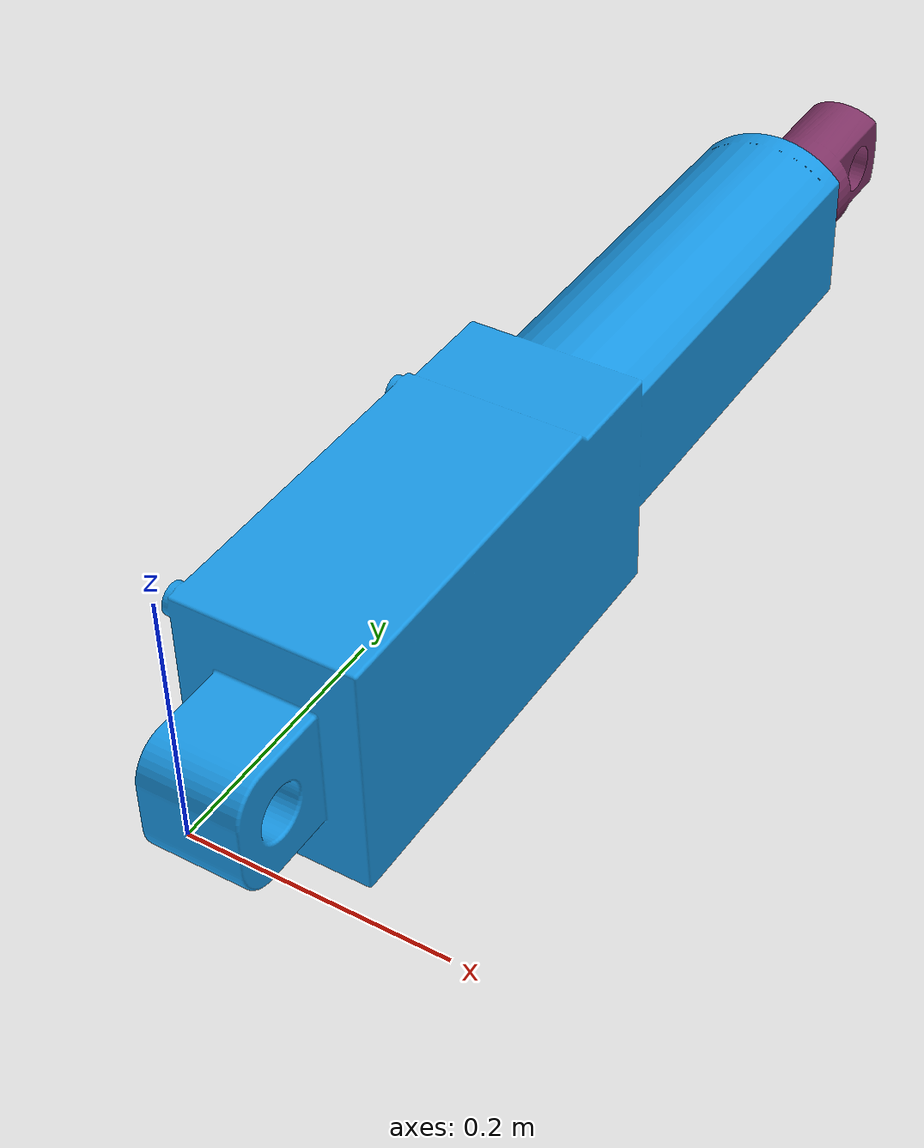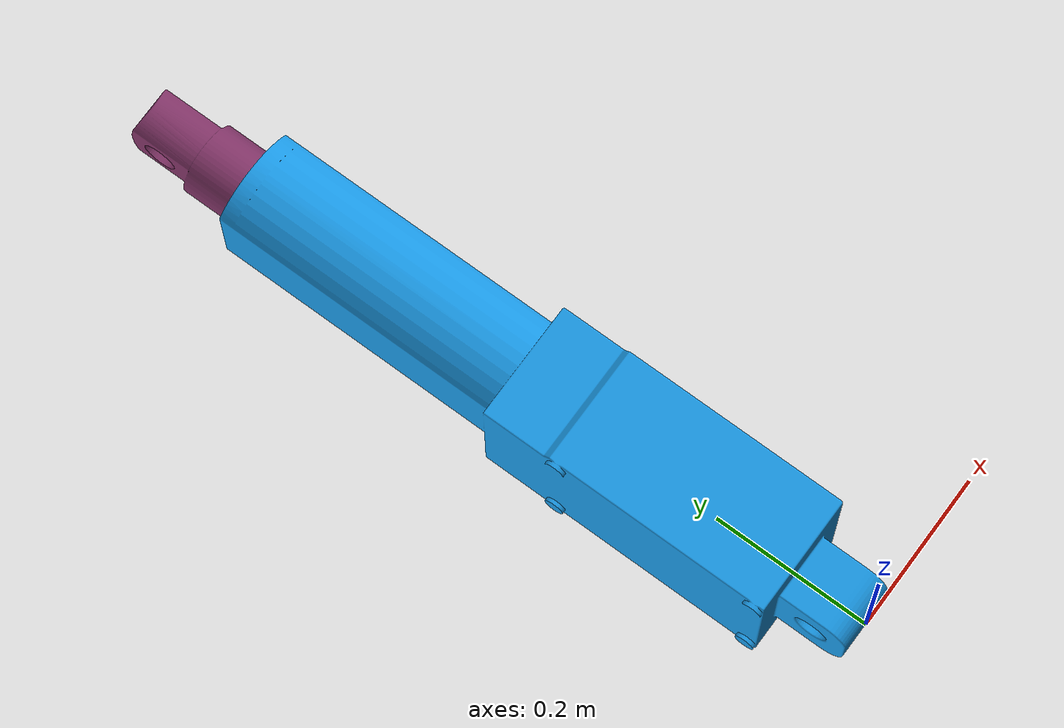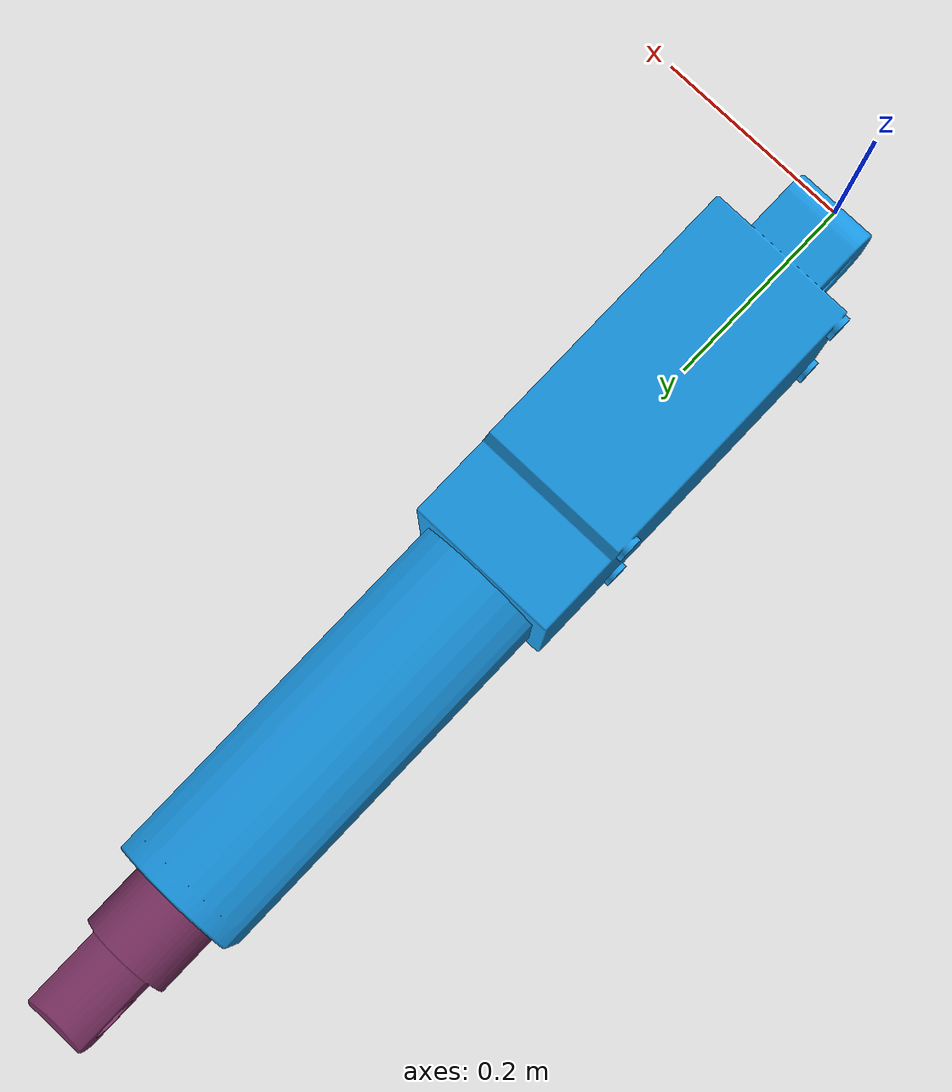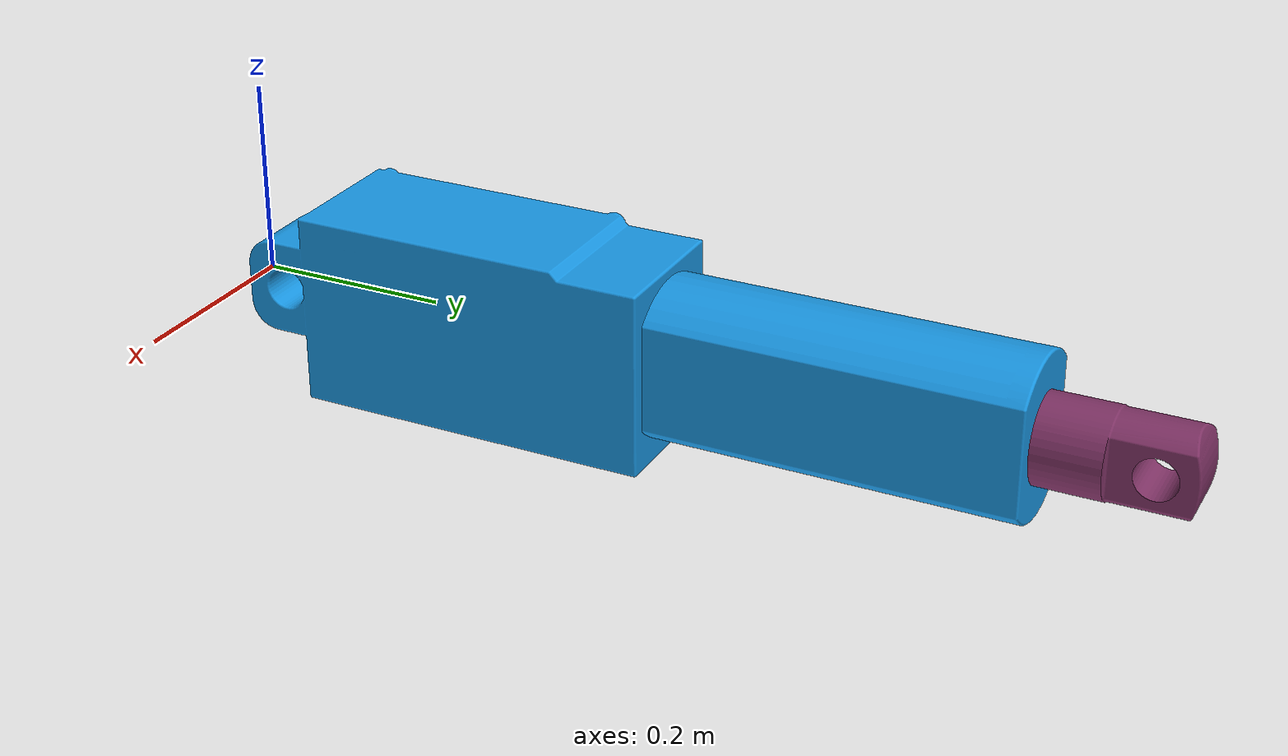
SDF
<sdf version="1.6">
    <world name="default">
      <include>
        <uri>model://linear_actuator</uri>
        <name>linear_actuator</name>

      </include>

    </world>
  </sdf>

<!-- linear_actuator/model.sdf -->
<sdf version='1.6'>
  <model name="linear_actuator">
  <static>true</static>
    <link name ="base" >
      <pose frame=''>0 0 0 0 0 0</pose>
      <inertial>
          <pose frame=''>0 0 0.09 0 0 0</pose>
          <mass>1.8</mass>
          <inertia>
              <ixx>0.108</ixx>
              <ixy>0</ixy>
              <ixz>0</ixz>
              <iyy>0.108</iyy>
              <iyz>0</iyz>
              <izz>0.054</izz>
          </inertia>
      </inertial>

      <visual name='visual_base_link'>

          <geometry>
              <mesh>

                  <uri>model://linear_actuator/STL/base.stl</uri>
                  <scale>0.01 0.01 0.01</scale>
              </mesh>
          </geometry>
          <material>
              <ambient>0.1 0.6 0.9 1</ambient>
              <diffuse>0.1 0.6 0.9 1</diffuse>
              <specular>0.1 0.6 0.9 1</specular>
              <emissive>0.1 0.6 0.9 0</emissive>
          </material>

      </visual>
      <collision name='collision_base_link'>

          <geometry>
              <mesh>

                  <uri>model://linear_actuator/STL/base.stl</uri>
                  <scale>0.01 0.01 0.01</scale>
              </mesh>
          </geometry>
      </collision>
    </link>

    <link name ="arm" >
        <pose frame=''>0 0.6 0 0 0 0</pose>
        <inertial>
            <pose frame=''>0 0 0.09 0 0 0</pose>
            <mass>1.8</mass>
            <inertia>
                <ixx>0.108</ixx>
                <ixy>0</ixy>
                <ixz>0</ixz>
                <iyy>0.108</iyy>
                <iyz>0</iyz>
                <izz>0.054</izz>
            </inertia>
        </inertial>

        <visual name='visual_arm_link'>

            <geometry>
                <mesh>

                    <uri>model://linear_actuator/STL/arm.stl</uri>
                    <scale>0.01 0.01 0.01</scale>
                </mesh>
            </geometry>
            <material>
                <ambient>0.5 0.2 0.4 1</ambient>
                <diffuse>0.5 0.2 0.4 1</diffuse>
                <specular>0.5 0.2 0.4 1</specular>
                <emissive>0.5 0.2 0.4 0</emissive>
            </material>

        </visual>
        <collision name='collision_arm_link'>

            <geometry>
                <mesh>

                    <uri>model://linear_actuator/STL/arm.stl</uri>
                    <scale>0.01 0.01 0.01</scale>
                </mesh>
            </geometry>
        </collision>
    </link>

    <joint name="arm_base" type="prismatic">
        <child>arm</child>
        <parent>base</parent>
        <axis>
            <xyz>0 1 0</xyz>
        </axis>
        <limit>
            <upper>  0.5</upper>
            <lower>  0</lower>
            <effort> 1000 </effort>
        </limit>
    </joint>

 </model>

</sdf>
